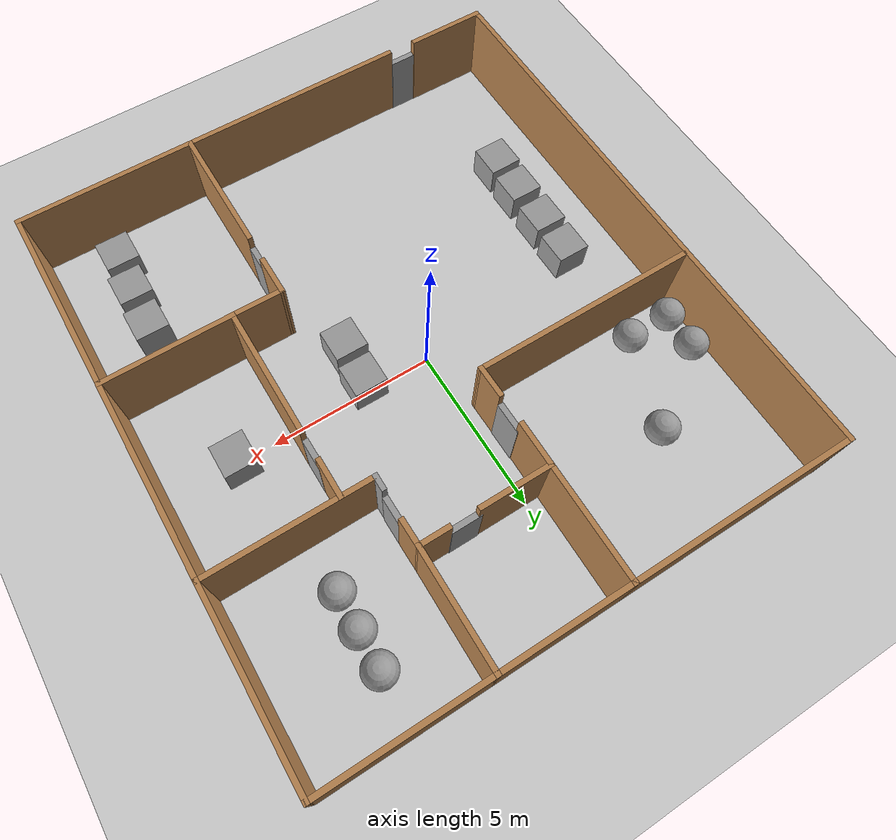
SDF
<sdf version="1.7">
 <world name="default">
  <light name="sun" type="directional">
   <pose>0 0 10 0 -0 0</pose>
   <diffuse>0.8 0.8 0.8 1</diffuse>
   <specular>0.2 0.2 0.2 1</specular>
   <attenuation>
    <range>1000</range>
    <constant>0.9</constant>
    <linear>0.01</linear>
    <quadratic>0.001</quadratic>
   </attenuation>
   <direction>-0.5 0.1 -0.9</direction>
   <spot><inner_angle>0</inner_angle><outer_angle>0</outer_angle><falloff>0</falloff></spot>
  </light>
  <model name="ground_plane">
   <static>1</static>
   <link name="link">
    <collision name="collision">
     <geometry><plane><normal>0 0 1</normal><size>100 100</size></plane></geometry>
     <surface><friction><ode><mu>100</mu><mu2>50</mu2></ode></friction></surface>
    </collision>
    <visual name="visual">
     <cast_shadows>0</cast_shadows>
     <geometry><plane><normal>0 0 1</normal><size>100 100</size></plane></geometry>
     <material>
      <script><uri>file://media/materials/scripts/gazebo.material</uri><name>Gazebo/Grey</name></script>
     </material>
    </visual>
   </link>
  </model>
  <gravity>0 0 -9.8</gravity>
  <magnetic_field>6e-06 2.3e-05 -4.2e-05</magnetic_field>
  <atmosphere type="adiabatic"/>
  <physics type="ode">
   <max_step_size>0.001</max_step_size>
   <real_time_factor>1</real_time_factor>
   <real_time_update_rate>1000</real_time_update_rate>
  </physics>
  <scene><ambient>0.4 0.4 0.4 1</ambient><background>0.7 0.7 0.7 1</background><shadows>1</shadows></scene>
  <spherical_coordinates>
   <surface_model>EARTH_WGS84</surface_model>
   <latitude_deg>0</latitude_deg>
   <longitude_deg>0</longitude_deg>
   <elevation>0</elevation>
   <heading_deg>0</heading_deg>
  </spherical_coordinates>
  <model name="floor_plan">
   <pose>0.483406 -0.204396 0 0 -0 0</pose>
   <link name="Door_0">
    <collision name="Door_0_Collision">
     <geometry><box><size>0.9 0.17 2</size></box></geometry>
     <pose>0 0 1 0 -0 0</pose>
    </collision>
    <visual name="Door_0_Visual">
     <pose>0 0 1 0 -0 0</pose>
     <geometry><box><size>0.9 0.17 2</size></box></geometry>
     <material>
      <script><uri>file://media/materials/scripts/gazebo.material</uri><name>Gazebo/Grey</name></script>
     </material>
    </visual>
    <pose>-0.938658 3.48583 0 0 0 -1.56023</pose>
   </link>
   <link name="Door_1">
    <collision name="Door_1_Collision">
     <geometry><box><size>0.9 0.17 2</size></box></geometry>
     <pose>0 0 1 0 -0 0</pose>
    </collision>
    <visual name="Door_1_Visual">
     <pose>0 0 1 0 -0 0</pose>
     <geometry><box><size>0.9 0.17 2</size></box></geometry>
     <material>
      <script><uri>file://media/materials/scripts/gazebo.material</uri><name>Gazebo/Grey</name></script>
     </material>
    </visual>
    <pose>1.52875 5.18029 0 0 0 -3.14059</pose>
   </link>
   <link name="Door_2">
    <collision name="Door_2_Collision">
     <geometry><box><size>0.9 0.17 2</size></box></geometry>
     <pose>0 0 1 0 -0 0</pose>
    </collision>
    <visual name="Door_2_Visual">
     <pose>0 0 1 0 -0 0</pose>
     <geometry><box><size>0.9 0.17 2</size></box></geometry>
     <material>
      <script><uri>file://media/materials/scripts/gazebo.material</uri><name>Gazebo/Grey</name></script>
     </material>
    </visual>
    <pose>2.89744 4.05105 0 0 -0 1.57892</pose>
   </link>
   <link name="Door_3">
    <collision name="Door_3_Collision">
     <geometry><box><size>0.9 0.17 2</size></box></geometry>
     <pose>0 0 1 0 -0 0</pose>
    </collision>
    <visual name="Door_3_Visual">
     <pose>0 0 1 0 -0 0</pose>
     <geometry><box><size>0.9 0.17 2</size></box></geometry>
     <material>
      <script><uri>file://media/materials/scripts/gazebo.material</uri><name>Gazebo/Grey</name></script>
     </material>
    </visual>
    <pose>3.88093 1.69052 0 0 -0 1.57717</pose>
   </link>
   <link name="Door_4">
    <collision name="Door_4_Collision">
     <geometry><box><size>0.9 0.17 2</size></box></geometry>
     <pose>0 0 1 0 -0 0</pose>
    </collision>
    <visual name="Door_4_Visual">
     <pose>0 0 1 0 -0 0</pose>
     <geometry><box><size>0.9 0.17 2</size></box></geometry>
     <material>
      <script><uri>file://media/materials/scripts/gazebo.material</uri><name>Gazebo/Grey</name></script>
     </material>
    </visual>
    <pose>2.40273 -4.16862 0 0 -0 1.56534</pose>
   </link>
   <link name="Door_5">
    <collision name="Door_5_Collision">
     <geometry><box><size>0.9 0.17 2</size></box></geometry>
     <pose>0 0 1 0 -0 0</pose>
    </collision>
    <visual name="Door_5_Visual">
     <pose>0 0 1 0 -0 0</pose>
     <geometry><box><size>0.9 0.17 2</size></box></geometry>
     <material>
      <script><uri>file://media/materials/scripts/gazebo.material</uri><name>Gazebo/Grey</name></script>
     </material>
    </visual>
    <pose>-4.97375 -8.52132 0 0 -0 3.13942</pose>
   </link>
   <link name="Wall_1">
    <collision name="Wall_1_Collision">
     <geometry><box><size>6.861 0.15 2.5</size></box></geometry>
     <pose>0 0 1.25 0 -0 0</pose>
    </collision>
    <visual name="Wall_1_Visual">
     <pose>0 0 1.25 0 -0 0</pose>
     <geometry><box><size>6.861 0.15 2.5</size></box></geometry>
     <material>
      <script><uri>file://media/materials/scripts/gazebo.material</uri><name>Gazebo/Wood</name></script>
      <ambient>1 1 1 1</ambient>
     </material>
     <meta><layer>0</layer></meta>
    </visual>
    <pose>-4.27682 2.09922 0 0 -0 0</pose>
   </link>
   <link name="Wall_14">
    <collision name="Wall_14_Collision">
     <geometry><box><size>2.2 0.15 2.5</size></box></geometry>
     <pose>0 0 1.25 0 -0 0</pose>
    </collision>
    <visual name="Wall_14_Visual">
     <pose>0 0 1.25 0 -0 0</pose>
     <geometry><box><size>2.2 0.15 2.5</size></box></geometry>
     <material>
      <script><uri>file://media/materials/scripts/gazebo.material</uri><name>Gazebo/Wood</name></script>
      <ambient>1 1 1 1</ambient>
     </material>
     <meta><layer>0</layer></meta>
    </visual>
    <pose>0.090676 5.17022 0 0 -0 3.14159</pose>
   </link>
   <link name="Wall_16">
    <collision name="Wall_16_Collision">
     <geometry><box><size>5 0.15 2.5</size></box></geometry>
     <pose>0 0 1.25 0 -0 0</pose>
    </collision>
    <visual name="Wall_16_Visual">
     <pose>0 0 1.25 0 -0 0</pose>
     <geometry><box><size>5 0.15 2.5</size></box></geometry>
     <material>
      <script><uri>file://media/materials/scripts/gazebo.material</uri><name>Gazebo/Wood</name></script>
      <ambient>1 1 1 1</ambient>
     </material>
     <meta><layer>0</layer></meta>
    </visual>
    <pose>5.32055 8.52278 0 0 -0 0</pose>
   </link>
   <link name="Wall_17">
    <collision name="Wall_17_Collision">
     <geometry><box><size>5.5 0.15 2.5</size></box></geometry>
     <pose>0 0 1.25 0 -0 0</pose>
    </collision>
    <visual name="Wall_17_Visual">
     <pose>0 0 1.25 0 -0 0</pose>
     <geometry><box><size>5.5 0.15 2.5</size></box></geometry>
     <material>
      <script><uri>file://media/materials/scripts/gazebo.material</uri><name>Gazebo/Wood</name></script>
      <ambient>1 1 1 1</ambient>
     </material>
     <meta><layer>0</layer></meta>
    </visual>
    <pose>7.74555 5.84778 0 0 -0 -1.5708</pose>
   </link>
   <link name="Wall_18">
    <collision name="Wall_18_Collision">
     <geometry><box><size>5 0.15 2.5</size></box></geometry>
     <pose>0 0 1.25 0 -0 0</pose>
    </collision>
    <visual name="Wall_18_Visual">
     <pose>0 0 1.25 0 -0 0</pose>
     <geometry><box><size>5 0.15 2.5</size></box></geometry>
     <material>
      <script><uri>file://media/materials/scripts/gazebo.material</uri><name>Gazebo/Wood</name></script>
      <ambient>1 1 1 1</ambient>
     </material>
     <meta><layer>0</layer></meta>
    </visual>
    <pose>5.32055 3.17278 0 0 -0 3.14159</pose>
   </link>
   <link name="Wall_19">
    <collision name="Wall_19_Collision">
     <geometry><box><size>0.5 0.15 2.5</size></box></geometry>
     <pose>0 0 1.25 0 -0 0</pose>
    </collision>
    <visual name="Wall_19_Visual">
     <pose>0 0 1.25 0 -0 0</pose>
     <geometry><box><size>0.5 0.15 2.5</size></box></geometry>
     <material>
      <script><uri>file://media/materials/scripts/gazebo.material</uri><name>Gazebo/Grey</name></script>
      <ambient>1 1 1 1</ambient>
     </material>
     <meta><layer>0</layer></meta>
    </visual>
    <pose>2.89555 3.34778 0 0 -0 1.5708</pose>
   </link>
   <link name="Wall_2">
    <collision name="Wall_2_Collision">
     <geometry><box><size>1.00014 0.15 2.5</size></box></geometry>
     <pose>0 0 1.25 0 -0 0</pose>
    </collision>
    <visual name="Wall_2_Visual">
     <pose>0 0 1.25 0 -0 0</pose>
     <geometry><box><size>1.00014 0.15 2.5</size></box></geometry>
     <material>
      <script><uri>file://media/materials/scripts/gazebo.material</uri><name>Gazebo/Wood</name></script>
      <ambient>1 1 1 1</ambient>
     </material>
     <meta><layer>0</layer></meta>
    </visual>
    <pose>-0.928744 2.52432 0 0 -0 1.58825</pose>
   </link>
   <link name="Wall_21">
    <collision name="Wall_21_Collision">
     <geometry><box><size>0.870645 0.15 2.5</size></box></geometry>
     <pose>0 0 1.25 0 -0 0</pose>
    </collision>
    <visual name="Wall_21_Visual">
     <pose>0 0 1.25 0 -0 0</pose>
     <geometry><box><size>0.870645 0.15 2.5</size></box></geometry>
     <material>
      <script><uri>file://media/materials/scripts/gazebo.material</uri><name>Gazebo/Wood</name></script>
      <ambient>1 1 1 1</ambient>
     </material>
     <meta><layer>0</layer></meta>
    </visual>
    <pose>2.90135 4.8125 0 0 -0 1.58688</pose>
   </link>
   <link name="Wall_23">
    <collision name="Wall_23_Collision">
     <geometry><box><size>6 0.15 2.5</size></box></geometry>
     <pose>0 0 1.25 0 -0 0</pose>
    </collision>
    <visual name="Wall_23_Visual">
     <pose>0 0 1.25 0 -0 0</pose>
     <geometry><box><size>6 0.15 2.5</size></box></geometry>
     <material>
      <script><uri>file://media/materials/scripts/gazebo.material</uri><name>Gazebo/Wood</name></script>
      <ambient>1 1 1 1</ambient>
     </material>
     <meta><layer>0</layer></meta>
    </visual>
    <pose>7.74555 0.247776 0 0 -0 -1.5708</pose>
   </link>
   <link name="Wall_24">
    <collision name="Wall_24_Collision">
     <geometry><box><size>4 0.15 2.5</size></box></geometry>
     <pose>0 0 1.25 0 -0 0</pose>
    </collision>
    <visual name="Wall_24_Visual">
     <pose>0 0 1.25 0 -0 0</pose>
     <geometry><box><size>4 0.15 2.5</size></box></geometry>
     <material>
      <script><uri>file://media/materials/scripts/gazebo.material</uri><name>Gazebo/Wood</name></script>
      <ambient>1 1 1 1</ambient>
     </material>
     <meta><layer>0</layer></meta>
    </visual>
    <pose>5.82055 -2.67722 0 0 -0 3.14159</pose>
   </link>
   <link name="Wall_25">
    <collision name="Wall_25_Collision">
     <geometry><box><size>4 0.15 2.5</size></box></geometry>
     <pose>0 0 1.25 0 -0 0</pose>
    </collision>
    <visual name="Wall_25_Visual">
     <pose>0 0 1.25 0 -0 0</pose>
     <geometry><box><size>4 0.15 2.5</size></box></geometry>
     <material>
      <script><uri>file://media/materials/scripts/gazebo.material</uri><name>Gazebo/Wood</name></script>
      <ambient>1 1 1 1</ambient>
     </material>
     <meta><layer>0</layer></meta>
    </visual>
    <pose>3.89555 -0.752224 0 0 -0 1.5708</pose>
   </link>
   <link name="Wall_27">
    <collision name="Wall_27_Collision">
     <geometry><box><size>1.23 0.15 2.5</size></box></geometry>
     <pose>0 0 1.25 0 -0 0</pose>
    </collision>
    <visual name="Wall_27_Visual">
     <pose>0 0 1.25 0 -0 0</pose>
     <geometry><box><size>1.23 0.15 2.5</size></box></geometry>
     <material>
      <script><uri>file://media/materials/scripts/gazebo.material</uri><name>Gazebo/Wood</name></script>
      <ambient>1 1 1 1</ambient>
     </material>
     <meta><layer>0</layer></meta>
    </visual>
    <pose>3.88368 2.63022 0 0 -0 1.5708</pose>
   </link>
   <link name="Wall_29">
    <collision name="Wall_29_Collision">
     <geometry><box><size>6 0.15 2.5</size></box></geometry>
     <pose>0 0 1.25 0 -0 0</pose>
    </collision>
    <visual name="Wall_29_Visual">
     <pose>0 0 1.25 0 -0 0</pose>
     <geometry><box><size>6 0.15 2.5</size></box></geometry>
     <material>
      <script><uri>file://media/materials/scripts/gazebo.material</uri><name>Gazebo/Wood</name></script>
      <ambient>1 1 1 1</ambient>
     </material>
     <meta><layer>0</layer></meta>
    </visual>
    <pose>7.74555 -5.60222 0 0 -0 -1.5708</pose>
   </link>
   <link name="Wall_31">
    <collision name="Wall_31_Collision">
     <geometry><box><size>5.5 0.15 2.5</size></box></geometry>
     <pose>0 0 1.25 0 -0 0</pose>
    </collision>
    <visual name="Wall_31_Visual">
     <pose>0 0 1.25 0 -0 0</pose>
     <geometry><box><size>5.5 0.15 2.5</size></box></geometry>
     <material>
      <script><uri>file://media/materials/scripts/gazebo.material</uri><name>Gazebo/Wood</name></script>
      <ambient>1 1 1 1</ambient>
     </material>
     <meta><layer>0</layer></meta>
    </visual>
    <pose>5.07055 -8.52722 0 0 -0 3.14159</pose>
   </link>
   <link name="Wall_32">
    <collision name="Wall_32_Collision">
     <geometry><box><size>4 0.15 2.5</size></box></geometry>
     <pose>0 0 1.25 0 -0 0</pose>
    </collision>
    <visual name="Wall_32_Visual">
     <pose>0 0 1.25 0 -0 0</pose>
     <geometry><box><size>4 0.15 2.5</size></box></geometry>
     <material>
      <script><uri>file://media/materials/scripts/gazebo.material</uri><name>Gazebo/Wood</name></script>
      <ambient>1 1 1 1</ambient>
     </material>
     <meta><layer>0</layer></meta>
    </visual>
    <pose>2.39555 -6.60222 0 0 -0 1.5708</pose>
   </link>
   <link name="Wall_34">
    <collision name="Wall_34_Collision">
     <geometry><box><size>1.25 0.15 2.5</size></box></geometry>
     <pose>0 0 1.25 0 -0 0</pose>
    </collision>
    <visual name="Wall_34_Visual">
     <pose>0 0 1.25 0 -0 0</pose>
     <geometry><box><size>1.25 0.15 2.5</size></box></geometry>
     <material>
      <script><uri>file://media/materials/scripts/gazebo.material</uri><name>Gazebo/Wood</name></script>
      <ambient>1 1 1 1</ambient>
     </material>
     <meta><layer>0</layer></meta>
    </visual>
    <pose>2.41537 -3.22114 0 0 -0 1.5708</pose>
   </link>
   <link name="Wall_35">
    <collision name="Wall_35_Collision">
     <geometry><box><size>1.63019 0.15 2.5</size></box></geometry>
     <pose>0 0 1.25 0 -0 0</pose>
    </collision>
    <visual name="Wall_35_Visual">
     <pose>0 0 1.25 0 -0 0</pose>
     <geometry><box><size>1.63019 0.15 2.5</size></box></geometry>
     <material>
      <script><uri>file://media/materials/scripts/gazebo.material</uri><name>Gazebo/Wood</name></script>
      <ambient>1 1 1 1</ambient>
     </material>
     <meta><layer>0</layer></meta>
    </visual>
    <pose>3.15546 -2.67418 0 0 -0 -0.004113</pose>
   </link>
   <link name="Wall_38">
    <collision name="Wall_38_Collision">
     <geometry><box><size>7 0.15 2.5</size></box></geometry>
     <pose>0 0 1.25 0 -0 0</pose>
    </collision>
    <visual name="Wall_38_Visual">
     <pose>0 0 1.25 0 -0 0</pose>
     <geometry><box><size>7 0.15 2.5</size></box></geometry>
     <material>
      <script><uri>file://media/materials/scripts/gazebo.material</uri><name>Gazebo/Wood</name></script>
      <ambient>1 1 1 1</ambient>
     </material>
     <meta><layer>0</layer></meta>
    </visual>
    <pose>-1.02945 -8.52722 0 0 -0 3.14159</pose>
   </link>
   <link name="Wall_4">
    <collision name="Wall_4_Collision">
     <geometry><box><size>4.75 0.15 2.5</size></box></geometry>
     <pose>0 0 1.25 0 -0 0</pose>
    </collision>
    <visual name="Wall_4_Visual">
     <pose>0 0 1.25 0 -0 0</pose>
     <geometry><box><size>4.75 0.15 2.5</size></box></geometry>
     <material>
      <script><uri>file://media/materials/scripts/gazebo.material</uri><name>Gazebo/Wood</name></script>
      <ambient>1 1 1 1</ambient>
     </material>
     <meta><layer>0</layer></meta>
    </visual>
    <pose>-0.954386 6.223 0 0 -0 1.57077</pose>
   </link>
   <link name="Wall_40">
    <collision name="Wall_40_Collision">
     <geometry><box><size>2.5 0.15 2.5</size></box></geometry>
     <pose>0 0 1.25 0 -0 0</pose>
    </collision>
    <visual name="Wall_40_Visual">
     <pose>0 0 1.25 0 -0 0</pose>
     <geometry><box><size>2.5 0.15 2.5</size></box></geometry>
     <material>
      <script><uri>file://media/materials/scripts/gazebo.material</uri><name>Gazebo/Wood</name></script>
      <ambient>1 1 1 1</ambient>
     </material>
     <meta><layer>0</layer></meta>
    </visual>
    <pose>-6.57055 -8.50184 0 0 -0 3.14154</pose>
   </link>
   <link name="Wall_41">
    <collision name="Wall_41_Collision">
     <geometry><box><size>17.179 0.15 2.5</size></box></geometry>
     <pose>0 0 1.25 0 -0 0</pose>
    </collision>
    <visual name="Wall_41_Visual">
     <pose>0 0 1.25 0 -0 0</pose>
     <geometry><box><size>17.179 0.15 2.5</size></box></geometry>
     <material>
      <script><uri>file://media/materials/scripts/gazebo.material</uri><name>Gazebo/Wood</name></script>
      <ambient>1 1 1 1</ambient>
     </material>
     <meta><layer>0</layer></meta>
    </visual>
    <pose>-7.74532 0.012723 0 0 -0 1.5708</pose>
   </link>
   <link name="Wall_5">
    <collision name="Wall_5_Collision">
     <geometry><box><size>6.83 0.15 2.5</size></box></geometry>
     <pose>0 0 1.25 0 -0 0</pose>
    </collision>
    <visual name="Wall_5_Visual">
     <pose>0 0 1.25 0 -0 0</pose>
     <geometry><box><size>6.83 0.15 2.5</size></box></geometry>
     <material>
      <script><uri>file://media/materials/scripts/gazebo.material</uri><name>Gazebo/Wood</name></script>
      <ambient>1 1 1 1</ambient>
     </material>
     <meta><layer>0</layer></meta>
    </visual>
    <pose>-4.29432 8.52322 0 0 -0 3.14159</pose>
   </link>
   <link name="Wall_7">
    <collision name="Wall_7_Collision">
     <geometry><box><size>4 0.15 2.5</size></box></geometry>
     <pose>0 0 1.25 0 -0 0</pose>
    </collision>
    <visual name="Wall_7_Visual">
     <pose>0 0 1.25 0 -0 0</pose>
     <geometry><box><size>4 0.15 2.5</size></box></geometry>
     <material>
      <script><uri>file://media/materials/scripts/gazebo.material</uri><name>Gazebo/Wood</name></script>
      <ambient>1 1 1 1</ambient>
     </material>
     <meta><layer>0</layer></meta>
    </visual>
    <pose>0.970614 8.523 0 0 -0 -0.000116</pose>
   </link>
   <link name="Wall_8">
    <collision name="Wall_8_Collision">
     <geometry><box><size>3.5 0.15 2.5</size></box></geometry>
     <pose>0 0 1.25 0 -0 0</pose>
    </collision>
    <visual name="Wall_8_Visual">
     <pose>0 0 1.25 0 -0 0</pose>
     <geometry><box><size>3.5 0.15 2.5</size></box></geometry>
     <material>
      <script><uri>file://media/materials/scripts/gazebo.material</uri><name>Gazebo/Wood</name></script>
      <ambient>1 1 1 1</ambient>
     </material>
     <meta><layer>0</layer></meta>
    </visual>
    <pose>2.89555 6.84778 0 0 -0 -1.5708</pose>
   </link>
   <link name="Wall_9">
    <collision name="Wall_9_Collision">
     <geometry><box><size>1 0.15 2.5</size></box></geometry>
     <pose>0 0 1.25 0 -0 0</pose>
    </collision>
    <visual name="Wall_9_Visual">
     <pose>0 0 1.25 0 -0 0</pose>
     <geometry><box><size>1 0.15 2.5</size></box></geometry>
     <material>
      <script><uri>file://media/materials/scripts/gazebo.material</uri><name>Gazebo/Wood</name></script>
      <ambient>1 1 1 1</ambient>
     </material>
     <meta><layer>0</layer></meta>
    </visual>
    <pose>2.47055 5.17278 0 0 -0 3.14159</pose>
   </link>
   <static>1</static>
  </model>
  <model name="unit_box">
   <pose>-5.4146 -4.51074 0.499995 0 1e-05 0</pose>
   <link name="link">
    <inertial>
     <mass>1</mass>
     <inertia>
      <ixx>0.166667</ixx>
      <ixy>0</ixy>
      <ixz>0</ixz>
      <iyy>0.166667</iyy>
      <iyz>0</iyz>
      <izz>0.166667</izz>
     </inertia>
    </inertial>
    <collision name="collision"><geometry><box><size>1 1 1</size></box></geometry></collision>
    <visual name="visual">
     <geometry><box><size>1 1 1</size></box></geometry>
     <material>
      <script><name>Gazebo/Grey</name><uri>file://media/materials/scripts/gazebo.material</uri></script>
     </material>
    </visual>
   </link>
  </model>
  <model name="unit_box_0">
   <pose>-5.38157 -3.31601 0.499995 -1e-05 -0 -0</pose>
   <link name="link">
    <inertial>
     <mass>1</mass>
     <inertia>
      <ixx>0.166667</ixx>
      <ixy>0</ixy>
      <ixz>0</ixz>
      <iyy>0.166667</iyy>
      <iyz>0</iyz>
      <izz>0.166667</izz>
     </inertia>
    </inertial>
    <collision name="collision"><geometry><box><size>1 1 1</size></box></geometry></collision>
    <visual name="visual">
     <geometry><box><size>1 1 1</size></box></geometry>
     <material>
      <script><name>Gazebo/Grey</name><uri>file://media/materials/scripts/gazebo.material</uri></script>
     </material>
    </visual>
   </link>
  </model>
  <model name="unit_box_1">
   <pose>-5.36597 -2.01556 0.499995 0 1e-05 0</pose>
   <link name="link">
    <inertial>
     <mass>1</mass>
     <inertia>
      <ixx>0.166667</ixx>
      <ixy>0</ixy>
      <ixz>0</ixz>
      <iyy>0.166667</iyy>
      <iyz>0</iyz>
      <izz>0.166667</izz>
     </inertia>
    </inertial>
    <collision name="collision"><geometry><box><size>1 1 1</size></box></geometry></collision>
    <visual name="visual">
     <geometry><box><size>1 1 1</size></box></geometry>
     <material>
      <script><name>Gazebo/Grey</name><uri>file://media/materials/scripts/gazebo.material</uri></script>
     </material>
    </visual>
   </link>
  </model>
  <model name="unit_box_2">
   <pose>-5.33777 -0.807929 0.499995 -1e-05 -0 -0</pose>
   <link name="link">
    <inertial>
     <mass>1</mass>
     <inertia>
      <ixx>0.166667</ixx>
      <ixy>0</ixy>
      <ixz>0</ixz>
      <iyy>0.166667</iyy>
      <iyz>0</iyz>
      <izz>0.166667</izz>
     </inertia>
    </inertial>
    <collision name="collision"><geometry><box><size>1 1 1</size></box></geometry></collision>
    <visual name="visual">
     <geometry><box><size>1 1 1</size></box></geometry>
     <material>
      <script><name>Gazebo/Grey</name><uri>file://media/materials/scripts/gazebo.material</uri></script>
     </material>
    </visual>
   </link>
  </model>
  <model name="unit_box_3">
   <pose>1.90301 -1.42318 0.499995 0 1e-05 0</pose>
   <link name="link">
    <inertial>
     <mass>1</mass>
     <inertia>
      <ixx>0.166667</ixx>
      <ixy>0</ixy>
      <ixz>0</ixz>
      <iyy>0.166667</iyy>
      <iyz>0</iyz>
      <izz>0.166667</izz>
     </inertia>
    </inertial>
    <collision name="collision"><geometry><box><size>1 1 1</size></box></geometry></collision>
    <visual name="visual">
     <geometry><box><size>1 1 1</size></box></geometry>
     <material>
      <script><name>Gazebo/Grey</name><uri>file://media/materials/scripts/gazebo.material</uri></script>
     </material>
    </visual>
   </link>
  </model>
  <model name="unit_box_4">
   <pose>1.98583 -0.202436 0.499995 -1e-05 -0 -0</pose>
   <link name="link">
    <inertial>
     <mass>1</mass>
     <inertia>
      <ixx>0.166667</ixx>
      <ixy>0</ixy>
      <ixz>0</ixz>
      <iyy>0.166667</iyy>
      <iyz>0</iyz>
      <izz>0.166667</izz>
     </inertia>
    </inertial>
    <collision name="collision"><geometry><box><size>1 1 1</size></box></geometry></collision>
    <visual name="visual">
     <geometry><box><size>1 1 1</size></box></geometry>
     <material>
      <script><name>Gazebo/Grey</name><uri>file://media/materials/scripts/gazebo.material</uri></script>
     </material>
    </visual>
   </link>
  </model>
  <model name="unit_sphere">
   <pose>-6.68085 2.59054 0.5 0 0.012185 0</pose>
   <link name="link">
    <inertial>
     <mass>1</mass>
     <inertia><ixx>0.1</ixx><ixy>0</ixy><ixz>0</ixz><iyy>0.1</iyy><iyz>0</iyz><izz>0.1</izz></inertia>
    </inertial>
    <collision name="collision"><geometry><sphere><radius>0.5</radius></sphere></geometry></collision>
    <visual name="visual">
     <geometry><sphere><radius>0.5</radius></sphere></geometry>
     <material>
      <script><name>Gazebo/Grey</name><uri>file://media/materials/scripts/gazebo.material</uri></script>
     </material>
    </visual>
   </link>
  </model>
  <model name="unit_sphere_0">
   <pose>-6.67886 3.68804 0.5 -1e-06 0.018264 0</pose>
   <link name="link">
    <inertial>
     <mass>1</mass>
     <inertia><ixx>0.1</ixx><ixy>0</ixy><ixz>0</ixz><iyy>0.1</iyy><iyz>0</iyz><izz>0.1</izz></inertia>
    </inertial>
    <collision name="collision"><geometry><sphere><radius>0.5</radius></sphere></geometry></collision>
    <visual name="visual">
     <geometry><sphere><radius>0.5</radius></sphere></geometry>
     <material>
      <script><name>Gazebo/Grey</name><uri>file://media/materials/scripts/gazebo.material</uri></script>
     </material>
    </visual>
   </link>
  </model>
  <model name="unit_sphere_1">
   <pose>-5.32015 2.58335 0.5 0 -0 0</pose>
   <link name="link">
    <inertial>
     <mass>1</mass>
     <inertia><ixx>0.1</ixx><ixy>0</ixy><ixz>0</ixz><iyy>0.1</iyy><iyz>0</iyz><izz>0.1</izz></inertia>
    </inertial>
    <collision name="collision"><geometry><sphere><radius>0.5</radius></sphere></geometry></collision>
    <visual name="visual">
     <geometry><sphere><radius>0.5</radius></sphere></geometry>
     <material>
      <script><name>Gazebo/Grey</name><uri>file://media/materials/scripts/gazebo.material</uri></script>
     </material>
    </visual>
   </link>
  </model>
  <model name="unit_sphere_2">
   <pose>-4.33364 5.30104 0.5 0 -0 0</pose>
   <link name="link">
    <inertial>
     <mass>1</mass>
     <inertia><ixx>0.1</ixx><ixy>0</ixy><ixz>0</ixz><iyy>0.1</iyy><iyz>0</iyz><izz>0.1</izz></inertia>
    </inertial>
    <collision name="collision"><geometry><sphere><radius>0.5</radius></sphere></geometry></collision>
    <visual name="visual">
     <geometry><sphere><radius>0.5</radius></sphere></geometry>
     <material>
      <script><name>Gazebo/Grey</name><uri>file://media/materials/scripts/gazebo.material</uri></script>
     </material>
    </visual>
   </link>
  </model>
  <model name="unit_sphere_3">
   <pose>5.48208 4.48257 0.5 0 -0 0</pose>
   <link name="link">
    <inertial>
     <mass>1</mass>
     <inertia><ixx>0.1</ixx><ixy>0</ixy><ixz>0</ixz><iyy>0.1</iyy><iyz>0</iyz><izz>0.1</izz></inertia>
    </inertial>
    <collision name="collision"><geometry><sphere><radius>0.5</radius></sphere></geometry></collision>
    <visual name="visual">
     <geometry><sphere><radius>0.5</radius></sphere></geometry>
     <material>
      <script><name>Gazebo/Grey</name><uri>file://media/materials/scripts/gazebo.material</uri></script>
     </material>
    </visual>
   </link>
  </model>
  <model name="unit_sphere_4">
   <pose>5.50144 5.56784 0.5 0 -0 0</pose>
   <link name="link">
    <inertial>
     <mass>1</mass>
     <inertia><ixx>0.1</ixx><ixy>0</ixy><ixz>0</ixz><iyy>0.1</iyy><iyz>0</iyz><izz>0.1</izz></inertia>
    </inertial>
    <collision name="collision"><geometry><sphere><radius>0.5</radius></sphere></geometry></collision>
    <visual name="visual">
     <geometry><sphere><radius>0.5</radius></sphere></geometry>
     <material>
      <script><name>Gazebo/Grey</name><uri>file://media/materials/scripts/gazebo.material</uri></script>
     </material>
    </visual>
   </link>
  </model>
  <model name="unit_sphere_5">
   <pose>5.51666 6.66771 0.5 0 -0 0</pose>
   <link name="link">
    <inertial>
     <mass>1</mass>
     <inertia><ixx>0.1</ixx><ixy>0</ixy><ixz>0</ixz><iyy>0.1</iyy><iyz>0</iyz><izz>0.1</izz></inertia>
    </inertial>
    <collision name="collision"><geometry><sphere><radius>0.5</radius></sphere></geometry></collision>
    <visual name="visual">
     <geometry><sphere><radius>0.5</radius></sphere></geometry>
     <material>
      <script><name>Gazebo/Grey</name><uri>file://media/materials/scripts/gazebo.material</uri></script>
     </material>
    </visual>
   </link>
  </model>
  <model name="unit_box_5">
   <pose>6.0939 0.026081 0.499995 -1e-05 -0 -0</pose>
   <link name="link">
    <inertial>
     <mass>1</mass>
     <inertia>
      <ixx>0.166667</ixx>
      <ixy>0</ixy>
      <ixz>0</ixz>
      <iyy>0.166667</iyy>
      <iyz>0</iyz>
      <izz>0.166667</izz>
     </inertia>
    </inertial>
    <collision name="collision"><geometry><box><size>1 1 1</size></box></geometry></collision>
    <visual name="visual">
     <geometry><box><size>1 1 1</size></box></geometry>
     <material>
      <script><name>Gazebo/Grey</name><uri>file://media/materials/scripts/gazebo.material</uri></script>
     </material>
    </visual>
   </link>
  </model>
  <model name="unit_box_6">
   <pose>6.22065 -7.48029 0.499995 0 1e-05 0</pose>
   <link name="link">
    <inertial>
     <mass>1</mass>
     <inertia>
      <ixx>0.166667</ixx>
      <ixy>0</ixy>
      <ixz>0</ixz>
      <iyy>0.166667</iyy>
      <iyz>0</iyz>
      <izz>0.166667</izz>
     </inertia>
    </inertial>
    <collision name="collision"><geometry><box><size>1 1 1</size></box></geometry></collision>
    <visual name="visual">
     <geometry><box><size>1 1 1</size></box></geometry>
     <material>
      <script><name>Gazebo/Grey</name><uri>file://media/materials/scripts/gazebo.material</uri></script>
     </material>
    </visual>
   </link>
  </model>
  <model name="unit_box_7">
   <pose>6.35314 -6.21157 0.499995 -1e-05 -0 0</pose>
   <link name="link">
    <inertial>
     <mass>1</mass>
     <inertia>
      <ixx>0.166667</ixx>
      <ixy>0</ixy>
      <ixz>0</ixz>
      <iyy>0.166667</iyy>
      <iyz>0</iyz>
      <izz>0.166667</izz>
     </inertia>
    </inertial>
    <collision name="collision"><geometry><box><size>1 1 1</size></box></geometry></collision>
    <visual name="visual">
     <geometry><box><size>1 1 1</size></box></geometry>
     <material>
      <script><name>Gazebo/Grey</name><uri>file://media/materials/scripts/gazebo.material</uri></script>
     </material>
    </visual>
   </link>
  </model>
  <model name="unit_box_8">
   <pose>6.42725 -4.91042 0.5 0 -0 0</pose>
   <link name="link">
    <inertial>
     <mass>1</mass>
     <inertia>
      <ixx>0.166667</ixx>
      <ixy>0</ixy>
      <ixz>0</ixz>
      <iyy>0.166667</iyy>
      <iyz>0</iyz>
      <izz>0.166667</izz>
     </inertia>
    </inertial>
    <collision name="collision"><geometry><box><size>1 1 1</size></box></geometry></collision>
    <visual name="visual">
     <geometry><box><size>1 1 1</size></box></geometry>
     <material>
      <script><name>Gazebo/Grey</name><uri>file://media/materials/scripts/gazebo.material</uri></script>
     </material>
    </visual>
   </link>
  </model>
 </world>
</sdf>
